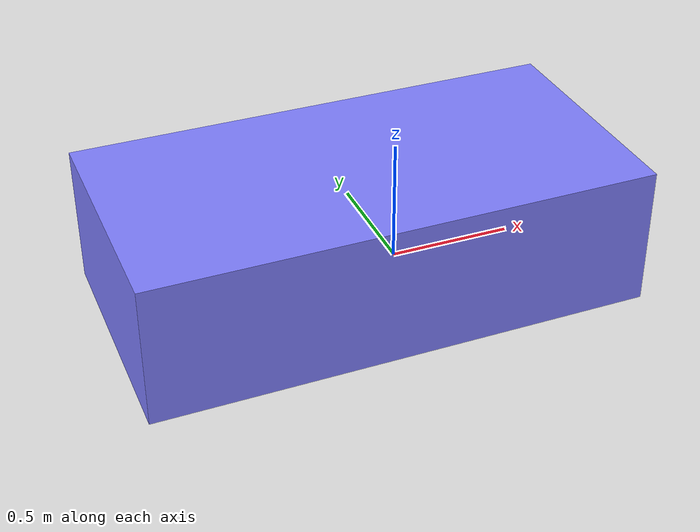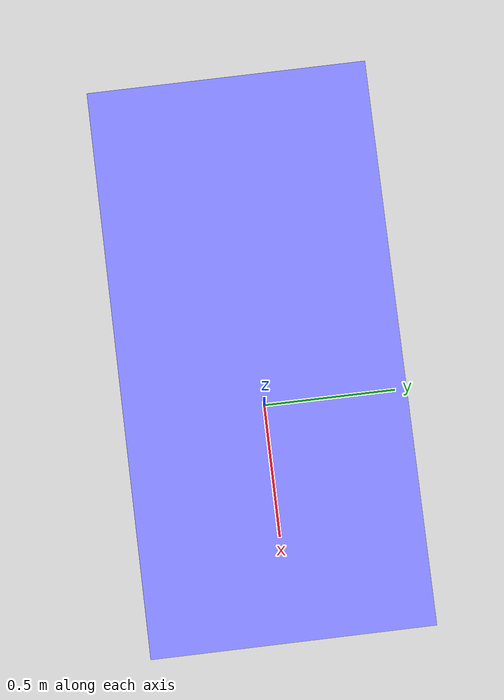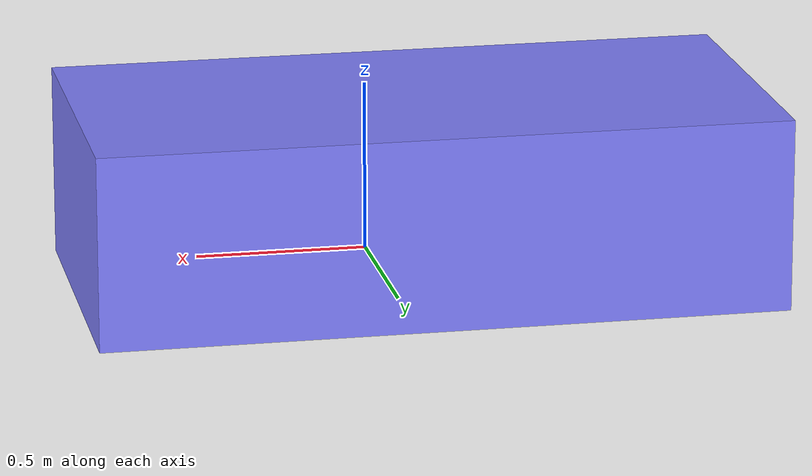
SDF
<?xml version="1.0" ?>
<sdf version="1.5">
  <model name="myblock">
    <static>true</static>
    <link name="link">
        <pose>-0.151427 -0 0.175 0 -0 0</pose>
        <inertial>
          <mass>1.14395</mass>
          <inertia>
            <ixx>0.126164</ixx>
            <ixy>0</ixy>
            <ixz>0</ixz>
            <iyy>0.416519</iyy>
            <iyz>0</iyz>
            <izz>0.481014</izz>
          </inertia>
        </inertial>
        <collision name='collision_chassis'>
          <geometry>
            <box>
              <size>2.01142 1 0.568726</size>
            </box>
          </geometry>
        </collision>
        <visual name='visual_chassis'>
          <geometry>
            <box>
              <size>2.01142 1 0.568726</size>
            </box>
          </geometry>
          <material>
            <ambient>0.5 0.5 1.0 1</ambient>
            <diffuse>0.5 0.5 1.0 1</diffuse>
            <specular>0.0 0.0 1.0 1</specular>
          </material>
        </visual>
    </link>
  </model>
</sdf>
